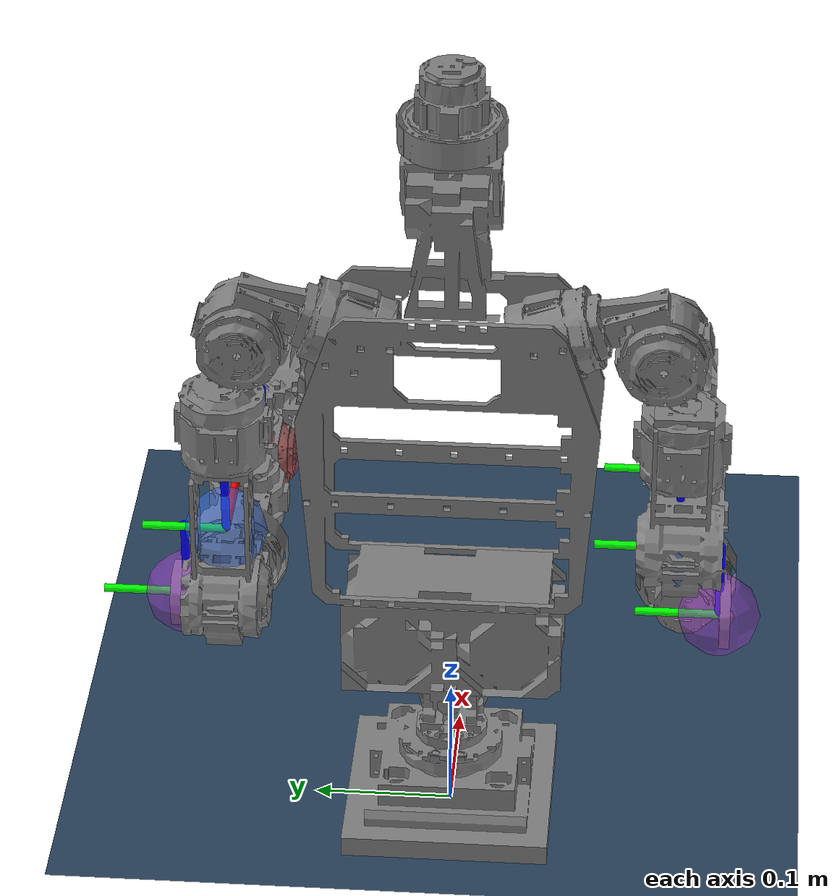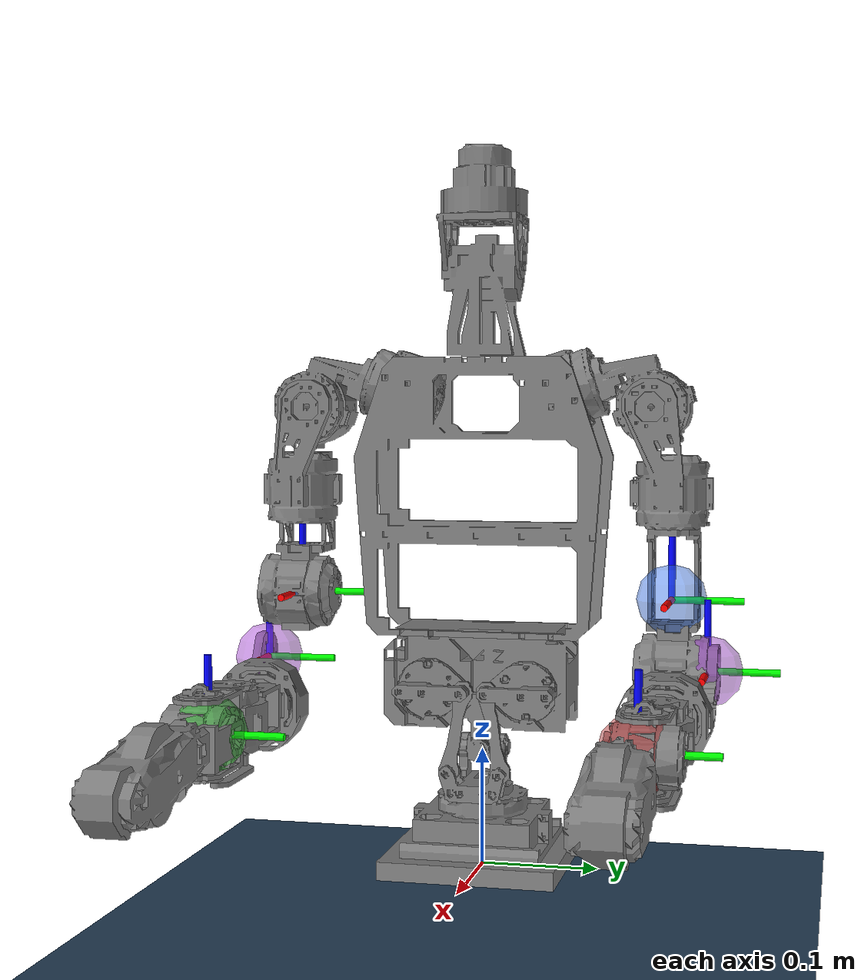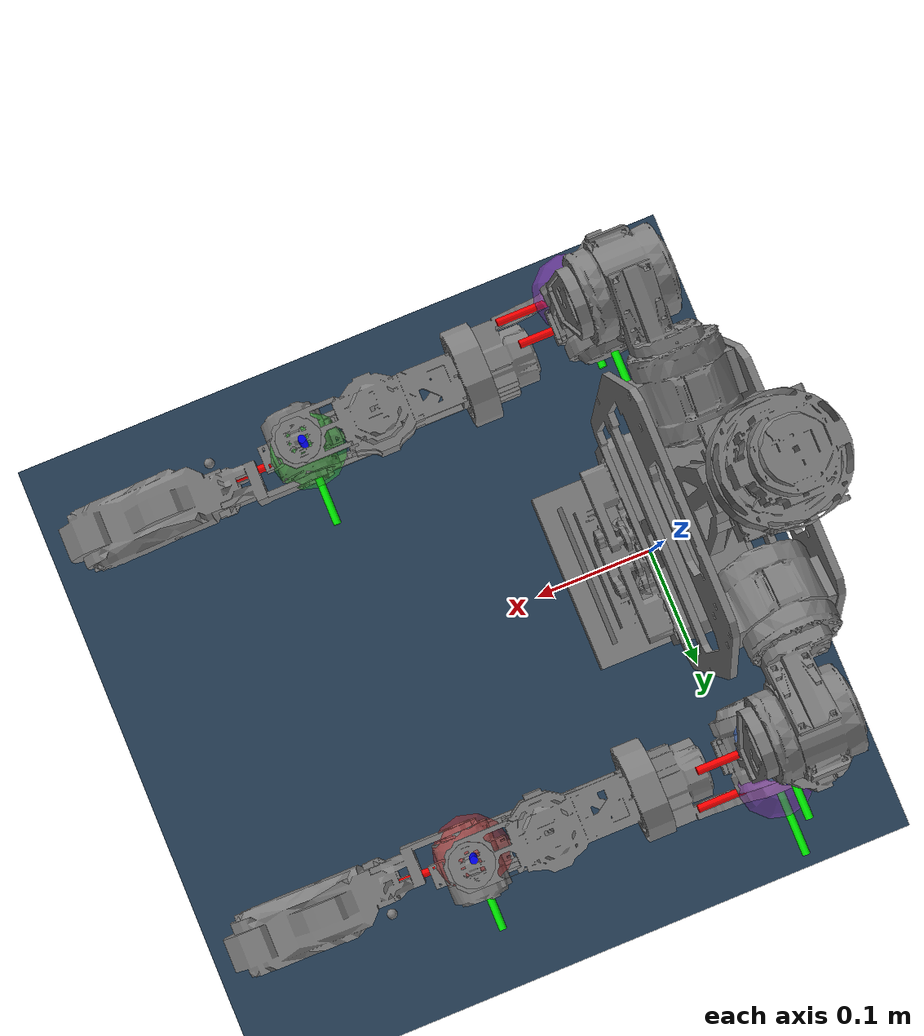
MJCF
<mujoco model="Semi_Taks_LV1_scene">
  <include file="Semi_Taks_LV1.xml" />
  <statistic center="0.15 0 0.3" extent="1.0" />
  <visual>
    <headlight ambient="0.4 0.4 0.4" diffuse="0.6 0.6 0.6" specular="0.1 0.1 0.1" />
    <rgba haze="0.15 0.25 0.35 1" />
    <global azimuth="140" elevation="-20" />
    <quality shadowsize="4096" />
    <scale framelength="0.08" framewidth="0.003" />
  </visual>
  <asset>
    <texture type="skybox" builtin="gradient" rgb1="0.3 0.5 0.7" rgb2="0 0 0" width="512" height="3072" />
    <texture type="2d" name="groundplane" builtin="checker" mark="edge" rgb1="0.2 0.3 0.4" rgb2="0.1 0.2 0.3" markrgb="0.8 0.8 0.8" width="300" height="300" />
    <material name="groundplane" texture="groundplane" texuniform="true" texrepeat="5 5" reflectance="0.2" />
  </asset>
  <worldbody>
    <light pos="0 0 2.5" dir="0 0 -1" directional="true" />
    <geom name="floor" type="plane" size="0 0 0.05" pos="0 0 -0.002" material="groundplane" contype="2" conaffinity="61" />
    <body name="left_hand_target" mocap="true" pos="0.227630 0.161900 0.149380">
      <inertial pos="0 0 0" mass="0.001" diaginertia="1e-8 1e-8 1e-8" />
      <geom type="sphere" size="0.03" contype="0" conaffinity="0" rgba="0.8 0.2 0.2 0.5" />
      <geom type="cylinder" size="0.003" fromto="0 0 0 0.06 0 0" contype="0" conaffinity="0" rgba="1 0 0 1" />
      <geom type="cylinder" size="0.003" fromto="0 0 0 0 0.06 0" contype="0" conaffinity="0" rgba="0 1 0 1" />
      <geom type="cylinder" size="0.003" fromto="0 0 0 0 0 0.06" contype="0" conaffinity="0" rgba="0 0 1 1" />
    </body>
    <body name="right_hand_target" mocap="true" pos="0.227630 -0.161900 0.149380">
      <inertial pos="0 0 0" mass="0.001" diaginertia="1e-8 1e-8 1e-8" />
      <geom type="sphere" size="0.03" contype="0" conaffinity="0" rgba="0.2 0.8 0.2 0.5" />
      <geom type="cylinder" size="0.003" fromto="0 0 0 0.06 0 0" contype="0" conaffinity="0" rgba="1 0 0 1" />
      <geom type="cylinder" size="0.003" fromto="0 0 0 0 0.06 0" contype="0" conaffinity="0" rgba="0 1 0 1" />
      <geom type="cylinder" size="0.003" fromto="0 0 0 0 0 0.06" contype="0" conaffinity="0" rgba="0 0 1 1" />
    </body>
    <body name="left_shoulder_target" mocap="true" pos="0.000200 0.161900 0.233075">
      <inertial pos="0 0 0" mass="0.001" diaginertia="1e-8 1e-8 1e-8" />
      <geom type="sphere" size="0.03" contype="0" conaffinity="0" rgba="0.2 0.45 0.95 0.5" />
      <geom type="cylinder" size="0.003" fromto="0 0 0 0.06 0 0" contype="0" conaffinity="0" rgba="1 0 0 1" />
      <geom type="cylinder" size="0.003" fromto="0 0 0 0 0.06 0" contype="0" conaffinity="0" rgba="0 1 0 1" />
      <geom type="cylinder" size="0.003" fromto="0 0 0 0 0 0.06" contype="0" conaffinity="0" rgba="0 0 1 1" />
    </body>
    <body name="right_shoulder_target" mocap="true" pos="0.000200 -0.161900 0.233075">
      <inertial pos="0 0 0" mass="0.001" diaginertia="1e-8 1e-8 1e-8" />
      <geom type="sphere" size="0.03" contype="0" conaffinity="0" rgba="0.2 0.45 0.95 0.5" />
      <geom type="cylinder" size="0.003" fromto="0 0 0 0.06 0 0" contype="0" conaffinity="0" rgba="1 0 0 1" />
      <geom type="cylinder" size="0.003" fromto="0 0 0 0 0.06 0" contype="0" conaffinity="0" rgba="0 1 0 1" />
      <geom type="cylinder" size="0.003" fromto="0 0 0 0 0 0.06" contype="0" conaffinity="0" rgba="0 0 1 1" />
    </body>
    <body name="left_elbow_target" mocap="true" pos="0.003200 0.192299 0.174380">
      <inertial pos="0 0 0" mass="0.001" diaginertia="1e-8 1e-8 1e-8" />
      <geom type="sphere" size="0.03" contype="0" conaffinity="0" rgba="0.65 0.25 0.85 0.5" />
      <geom type="cylinder" size="0.003" fromto="0 0 0 0.06 0 0" contype="0" conaffinity="0" rgba="1 0 0 1" />
      <geom type="cylinder" size="0.003" fromto="0 0 0 0 0.06 0" contype="0" conaffinity="0" rgba="0 1 0 1" />
      <geom type="cylinder" size="0.003" fromto="0 0 0 0 0 0.06" contype="0" conaffinity="0" rgba="0 0 1 1" />
    </body>
    <body name="right_elbow_target" mocap="true" pos="0.003200 -0.192299 0.174380">
      <inertial pos="0 0 0" mass="0.001" diaginertia="1e-8 1e-8 1e-8" />
      <geom type="sphere" size="0.03" contype="0" conaffinity="0" rgba="0.65 0.25 0.85 0.5" />
      <geom type="cylinder" size="0.003" fromto="0 0 0 0.06 0 0" contype="0" conaffinity="0" rgba="1 0 0 1" />
      <geom type="cylinder" size="0.003" fromto="0 0 0 0 0.06 0" contype="0" conaffinity="0" rgba="0 1 0 1" />
      <geom type="cylinder" size="0.003" fromto="0 0 0 0 0 0.06" contype="0" conaffinity="0" rgba="0 0 1 1" />
    </body>
  </worldbody>
</mujoco>

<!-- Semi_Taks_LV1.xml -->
<mujoco model="Semi_Taks_LV1">
  <compiler angle="radian" meshdir="meshes/" autolimits="true" />
  <option timestep="0.002" iterations="150" solver="Newton" tolerance="1e-10" integrator="implicit" gravity="0 0 -9.81" />
  <default>
    <joint limited="true" />
    <geom contype="0" conaffinity="0" condim="1" group="1" density="0" friction="1 0.005 0.0001" />
    <equality solref="0.01 2" solimp="0.95 0.999 0.001 0.5 2" />
    <default class="torso_motor">
      <joint armature="0.00985321" damping="0.01" frictionloss="0.1" />
    </default>
    <default class="shoulder_motor">
      <joint armature="0.0030254460886951994" damping="0.01" frictionloss="0.1" />
    </default>
    <default class="wrist_motor">
      <joint armature="0.00074568" damping="0.01" frictionloss="0.01" />
    </default>
  </default>
  <asset>
    <mesh name="base_link" file="base_link.STL" />
    <mesh name="head_pitch_link" file="head_pitch_link.STL" />
    <mesh name="head_yaw_link" file="head_yaw_link.STL" />
    <mesh name="left_elbow_link" file="left_elbow_link.STL" />
    <mesh name="left_shoulder_pitch_link" file="left_shoulder_pitch_link.STL" />
    <mesh name="left_shoulder_roll_link" file="left_shoulder_roll_link.STL" />
    <mesh name="left_shoulder_yaw_link" file="left_shoulder_yaw_link.STL" />
    <mesh name="left_wrist_pitch_link" file="left_wrist_pitch_link.STL" />
    <mesh name="left_wrist_roll_link" file="left_wrist_roll_link.STL" />
    <mesh name="left_wrist_yaw_inner_rod_link" file="left_wrist_yaw_inner_rod_link.STL" />
    <mesh name="left_wrist_yaw_link" file="left_wrist_yaw_link.STL" />
    <mesh name="left_wrist_yaw_motor_link" file="left_wrist_yaw_motor_link.STL" />
    <mesh name="left_wrist_yaw_outer_rod_link" file="left_wrist_yaw_outer_rod_link.STL" />
    <mesh name="right_elbow_link" file="right_elbow_link.STL" />
    <mesh name="right_shoulder_pitch_link" file="right_shoulder_pitch_link.STL" />
    <mesh name="right_shoulder_roll_link" file="right_shoulder_roll_link.STL" />
    <mesh name="right_shoulder_yaw_link" file="right_shoulder_yaw_link.STL" />
    <mesh name="right_wrist_pitch_link" file="right_wrist_pitch_link.STL" />
    <mesh name="right_wrist_roll_link" file="right_wrist_roll_link.STL" />
    <mesh name="right_wrist_yaw_inner_rod_link" file="right_wrist_yaw_inner_rod_link.STL" />
    <mesh name="right_wrist_yaw_link" file="right_wrist_yaw_link.STL" />
    <mesh name="right_wrist_yaw_motor_link" file="right_wrist_yaw_motor_link.STL" />
    <mesh name="right_wrist_yaw_outer_rod_link" file="right_wrist_yaw_outer_rod_link.STL" />
    <mesh name="waist_left_link_driven_link" file="waist_left_link_driven_link.STL" />
    <mesh name="waist_left_motor_link" file="waist_left_motor_link.STL" />
    <mesh name="waist_pitch_link" file="waist_pitch_link.STL" />
    <mesh name="waist_right_link_driven_link" file="waist_right_link_driven_link.STL" />
    <mesh name="waist_right_motor_link" file="waist_right_motor_link.STL" />
    <mesh name="waist_roll_link" file="waist_roll_link.STL" />
    <mesh name="waist_roll_link__1" file="waist_roll_link_torso.STL" />
    <mesh name="waist_roll_link__2" file="waist_roll_link_right_shoulder_mount.STL" />
    <mesh name="waist_roll_link__3" file="waist_roll_link_left_shoulder_mount.STL" />
    <mesh name="waist_yaw_link" file="waist_yaw_link.STL" />
  </asset>
  <worldbody>
    <body name="base_link" pos="0 0 0">
      <inertial pos="3.615731527232031e-05 7.216508380371886e-07 0.0236463859394359" mass="2.028270999256437" diaginertia="0.00320405321379563 0.003227351317043934 0.005300317236807891" quat="0.7068692470884984 4.045966068608527e-05 -4.868688980210021e-05 -0.7073442326852902" />
      <geom type="mesh" mesh="base_link" />
      <geom name="pelvis_collision" type="mesh" mesh="base_link" contype="1" conaffinity="2" group="0" />
      <body name="waist_yaw_link" pos="0 0 0.0698">
        <inertial pos="0.01254820741023754 1.774573045730403e-07 0.004477069717120669" mass="0.1072849788223774" diaginertia="3.219725689293869e-05 5.038539659835473e-05 6.264688348621567e-05" quat="0.9999807613707475 3.961500670809034e-06 -0.006202937080373303 2.107755930732424e-05" />
        <joint name="waist_yaw_joint" class="torso_motor" type="hinge" axis="0 0 1" range="-2.618 2.618" />
        <geom type="mesh" mesh="waist_yaw_link" />
        <geom name="waist_yaw_link_collision" type="mesh" mesh="waist_yaw_link" contype="4" conaffinity="2" group="0" />
        <body name="waist_right_link_driven_link" pos="0.03415 -0.0221 0.0195">
          <inertial pos="-0.0004222742054754217 0.004492540189479952 0.02335166941052011" mass="0.01206529948233483" diaginertia="1.982038329099174e-07 8.088291506305952e-06 8.253733665269904e-06" quat="0.05983465927130303 0.7063064689681575 -0.05954225735721248 -0.7028553941120661" />
          <joint name="waist_right_link_driven_joint" class="torso_motor" type="ball" limited="false" />
          <geom type="mesh" mesh="waist_right_link_driven_link" />
          <geom name="waist_right_link_driven_link_collision" type="mesh" mesh="waist_right_link_driven_link" contype="4" conaffinity="2" group="0" />
        </body>
        <body name="waist_left_link_driven_link" pos="0.03415 0.022 0.0195">
          <inertial pos="-0.0004222742054754633 -0.004459511522222754 0.0233878976690826" mass="0.01206529948233483" diaginertia="1.982038329800774e-07 8.088291506258164e-06 8.253733665292283e-06" quat="0.7029030743452723 0.05897672014921494 -0.7063543821429821 -0.05926635963016416" />
          <joint name="waist_left_link_driven_joint" class="torso_motor" type="ball" limited="false" />
          <geom type="mesh" mesh="waist_left_link_driven_link" />
          <geom name="waist_left_link_driven_link_collision" type="mesh" mesh="waist_left_link_driven_link" contype="4" conaffinity="2" group="0" />
        </body>
        <body name="waist_pitch_link" pos="0 0 0.0355">
          <inertial pos="0.0005514692704038878 0.0001362726318468048 -0.002999998175466909" mass="0.1455350284507047" diaginertia="1.811399186504572e-05 1.880139950655852e-05 2.892649957492744e-05" quat="0.71220371439526 1.385339520915e-06 1.362759154760334e-06 -0.7019728407836152" />
          <joint name="waist_pitch_joint" class="torso_motor" type="hinge" axis="0 1 0" range="-0.7854 0.7854" />
          <geom type="mesh" mesh="waist_pitch_link" />
          <geom name="waist_pitch_link_collision" type="mesh" mesh="waist_pitch_link" contype="4" conaffinity="2" group="0" />
          <body name="waist_roll_link" pos="0 0 0">
            <inertial pos="-0.006215893090878439 -0.0001728662368248775 0.1839629135641128" mass="4.031182211173786" diaginertia="0.01243463367725486 0.08121873133623367 0.09090112362911176" quat="0.7102087284969349 0.0004447629884379354 -0.7039908859293441 -0.0004434873934207381" />
            <joint name="waist_roll_joint" class="torso_motor" type="hinge" axis="1 0 0" range="-0.7854 0.7854" />
            <geom type="mesh" mesh="waist_roll_link" />
            <geom name="waist_roll_collision" type="mesh" mesh="waist_roll_link" contype="4" conaffinity="2" group="0" />
            <geom type="mesh" mesh="waist_roll_link__1" />
            <geom name="waist_roll_collision_1" type="mesh" mesh="waist_roll_link__1" contype="4" conaffinity="2" group="0" />
            <geom type="mesh" mesh="waist_roll_link__2" />
            <geom name="waist_roll_collision_2" type="mesh" mesh="waist_roll_link__2" contype="4" conaffinity="2" group="0" />
            <geom type="mesh" mesh="waist_roll_link__3" />
            <geom name="waist_roll_collision_3" type="mesh" mesh="waist_roll_link__3" contype="4" conaffinity="2" group="0" />
            <body name="waist_right_motor_link" pos="0.02515 -0.0425 0.052">
              <inertial pos="0.005045957652873252 0.002539038177855203 -0.002999998175600954" mass="0.06153448822481093" diaginertia="9.469248558005692e-06 2.051156321449989e-05 2.286533124687244e-05" quat="-0.4960948446569809 -0.4960948446640437 0.5038748903286863 0.5038748903237577" />
              <joint name="waist_right_motor_joint" class="torso_motor" type="hinge" axis="1 0 0" range="-0.75000000 1.16190000" />
              <geom type="mesh" mesh="waist_right_motor_link" />
              <geom name="waist_right_motor_link_collision" type="mesh" mesh="waist_right_motor_link" contype="4" conaffinity="2" group="0" />
            </body>
            <body name="waist_left_motor_link" pos="0.02515 0.0425 0.052">
              <inertial pos="0.005045957652873252 -0.00253901324983475 -0.00299622045718162" mass="0.06153448822481093" diaginertia="9.469248558005692e-06 2.051156321449988e-05 2.286533124687243e-05" quat="0.5042495987744153 0.5034999030172355 -0.4964637674426716 -0.4957256473232997" />
              <joint name="waist_left_motor_joint" class="torso_motor" type="hinge" axis="1 0 0" range="-1.16190000 0.75000000" />
              <geom type="mesh" mesh="waist_left_motor_link" />
              <geom name="waist_left_motor_link_collision" type="mesh" mesh="waist_left_motor_link" contype="4" conaffinity="2" group="0" />
            </body>
            <body name="right_shoulder_pitch_link" pos="-0.0048 -0.0982676 0.3108799">
              <inertial pos="0.008627194328436411 -0.04554020901173107 -0.01948230209624802" mass="0.5718550961793376" diaginertia="0.0002681848144770728 0.0003422831986915668 0.0003556845691616242" quat="0.6814611056778687 0.281098447059946 0.1778477563986825 -0.6518930894347157" />
              <joint name="right_shoulder_pitch_joint" class="shoulder_motor" type="hinge" axis="0 0.94832 -0.3173" range="-3.1415 1.0472" />
              <geom type="mesh" mesh="right_shoulder_pitch_link" />
              <geom name="right_shoulder_pitch_collision" type="mesh" mesh="right_shoulder_pitch_link" contype="8" conaffinity="50" group="0" />
              <body name="right_shoulder_roll_link" pos="0.042 -0.0486762 -0.0218439">
                <inertial pos="-0.03527126628168185 -0.01433615164985719 -0.06783766673615693" mass="0.5652982993172326" diaginertia="0.0002671111202404957 0.0004114129755633964 0.0004332048263893371" quat="-0.383928697001941 -0.302824114813696 -0.5811660201251703 0.6504939416762952" />
                <joint name="right_shoulder_roll_joint" class="shoulder_motor" type="hinge" axis="1 0 0" range="-2.2515 1.5882" />
                <geom type="mesh" mesh="right_shoulder_roll_link" />
                <geom name="right_shoulder_roll_collision" type="mesh" mesh="right_shoulder_roll_link" contype="8" conaffinity="50" group="0" />
                <body name="right_shoulder_yaw_link" pos="-0.0383 -0.0149556 -0.105461">
                  <inertial pos="0.001870059667368326 -0.001602641442290054 -0.1073988483988307" mass="0.5784603077913861" diaginertia="0.0002750809364595264 0.0006547511708962495 0.0006796907636802913" quat="0.00092919415258101 0.666527132782034 0.01281744783487267 0.7453699959715228" />
                  <joint name="right_shoulder_yaw_joint" class="shoulder_motor" type="hinge" axis="0 0 1" range="-2.618 2.618" />
                  <geom type="mesh" mesh="right_shoulder_yaw_link" />
                  <geom name="right_shoulder_yaw_collision" type="mesh" mesh="right_shoulder_yaw_link" contype="8" conaffinity="50" group="0" />
                  <body name="right_elbow_link" pos="0.003 -0.0356006 -0.1154997">
                    <inertial pos="0.06625808209753588 0.02745142866062647 -0.0235697300032251" mass="0.3259631470204687" diaginertia="0.0001187362080778953 0.0002396431084334887 0.0002409384075634666" quat="-0.4422045801026257 0.862592795399898 0.107780393669499 -0.2208442107026994" />
                    <joint name="right_elbow_joint" class="shoulder_motor" type="hinge" axis="0 1 0" range="-1.0472 1.5708" />
                    <site name="right_elbow" pos="0 0 0" size="0.006" />
                    <geom type="mesh" mesh="right_elbow_link" />
                    <geom name="right_elbow_collision" type="mesh" mesh="right_elbow_link" contype="8" conaffinity="50" group="0" />
                    <body name="right_wrist_roll_link" pos="0.0972 0.0305006 -0.025">
                      <inertial pos="0.05705037987646468 -1.518472729272746e-05 0.00116409611339699" mass="0.4165237436850193" diaginertia="0.0001976031591587451 0.0005867765893378462 0.0006106968753898552" quat="0.7061903682963695 -0.7079628857190268 -0.006445251467427827 -0.006494220765244513" />
                      <joint name="right_wrist_roll_joint" class="wrist_motor" type="hinge" axis="1 0 0" range="-2.67 2.67" />
                      <geom type="mesh" mesh="right_wrist_roll_link" />
                      <geom name="right_wrist_roll_collision" type="mesh" mesh="right_wrist_roll_link" contype="8" conaffinity="50" group="0" />
                      <body name="right_wrist_yaw_motor_link" pos="0.071 -6e-07 0.0012997">
                        <inertial pos="4.248559121178275e-08 5.782823624955746e-07 -0.03023266637914192" mass="0.006100131928918171" diaginertia="4.307240444844824e-07 7.812635828316256e-07 9.324876704745749e-07" quat="5.281024377919805e-12 -0.7071067811865459 0.7071067811865491 -2.722024498362503e-14" />
                        <joint name="right_wrist_yaw_motor_joint" class="wrist_motor" type="hinge" axis="0 0 1" range="-1.309 1.309" />
                        <geom type="mesh" mesh="right_wrist_yaw_motor_link" />
                        <geom name="right_wrist_yaw_motor_link_collision" type="mesh" mesh="right_wrist_yaw_motor_link" contype="8" conaffinity="50" group="0" />
                        <body name="right_wrist_yaw_outer_rod_link" pos="0 -0.012 -0.038">
                          <inertial pos="0.03025004248552082 -0.004500304485048345 -7.840760069587061e-05" mass="0.005904557513617986" diaginertia="6.094309888750246e-08 2.024811491137713e-06 2.071379005693937e-06" quat="-0.006076178565180265 0.9999815398566335 -3.726252010796779e-16 2.816892719016614e-15" />
                          <joint name="right_wrist_yaw_outer_rod_joint" class="wrist_motor" type="hinge" axis="0 0 1" limited="false" />
                          <geom type="mesh" mesh="right_wrist_yaw_outer_rod_link" />
                          <geom name="right_wrist_yaw_outer_rod_link_collision" type="mesh" mesh="right_wrist_yaw_outer_rod_link" contype="8" conaffinity="50" group="0" />
                        </body>
                        <body name="right_wrist_yaw_inner_rod_link" pos="0 0.012 -0.038">
                          <inertial pos="0.03025004248552079 0.00450146104992416 -7.840760069587061e-05" mass="0.005904557513617986" diaginertia="6.094309888750246e-08 2.024811491137712e-06 2.071379005693936e-06" quat="0.9999815398566335 -0.00607617856518676 -2.80913865035733e-15 2.468638619212179e-17" />
                          <joint name="right_wrist_yaw_inner_rod_joint" class="wrist_motor" type="hinge" axis="0 0 1" limited="false" />
                          <geom type="mesh" mesh="right_wrist_yaw_inner_rod_link" />
                          <geom name="right_wrist_yaw_inner_rod_link_collision" type="mesh" mesh="right_wrist_yaw_inner_rod_link" contype="8" conaffinity="50" group="0" />
                        </body>
                      </body>
                      <body name="right_wrist_yaw_link" pos="0.1315 -6e-07 0">
                        <inertial pos="-0.0001309102913537863 -0.001518180455257451 -0.0004661132764635922" mass="0.2829538436436055" diaginertia="8.929776354177295e-05 0.0001018668552999004 0.0001130786340444418" quat="0.706402710678379 0.03030899335559634 -0.7070926161159841 0.009828911550237259" />
                        <joint name="right_wrist_yaw_joint" class="wrist_motor" type="hinge" axis="0 0 1" range="-1.309 1.309" />
                        <geom type="mesh" mesh="right_wrist_yaw_link" />
                        <geom name="right_wrist_yaw_collision" type="mesh" mesh="right_wrist_yaw_link" contype="8" conaffinity="50" group="0" />
                        <body name="right_wrist_pitch_link" pos="0 0 0">
                          <inertial pos="0.1212949356021869 0.006058475154452014 -0.0058920822706722" mass="0.8539831028978021" diaginertia="0.0002721179065874577 0.001301829010017592 0.001338601216038249" quat="0.6818399662780394 0.7285743812219072 0.01037948454068169 -0.06454376587825439" />
                          <joint name="right_wrist_pitch_joint" class="wrist_motor" type="hinge" axis="0 1 0" range="-1.5708 1.5708" />
                          <site name="right_tcp" pos="0.06851 -0.01358 -0.0005753" size="0.004" />
                          <camera name="right_wrist_camera" pos="0.1034313514828682 0.023001 0.03892825171351433" xyaxes="0 -1 0 0.342020143326 0 0.939692620786" fovy="120" resolution="128 128" />
                          <geom type="mesh" mesh="right_wrist_pitch_link" />
                          <geom name="right_hand_collision" type="mesh" mesh="right_wrist_pitch_link" contype="8" conaffinity="50" group="0" />
                        </body>
                      </body>
                    </body>
                  </body>
                </body>
              </body>
            </body>
            <body name="left_shoulder_pitch_link" pos="-0.0048 0.0982676 0.3108799">
              <inertial pos="0.0086271981303996 0.04554022346996121 -0.01948231444624399" mass="0.5718554098730556" diaginertia="0.0002681848620268912 0.0003422835805579798 0.000355684929504569" quat="0.2810986390976007 0.6814613646256432 0.6518926007236866 -0.177848252006425" />
              <joint name="left_shoulder_pitch_joint" class="shoulder_motor" type="hinge" axis="0 0.94832 0.3173" range="-3.1415 1.0472" />
              <geom type="mesh" mesh="left_shoulder_pitch_link" />
              <geom name="left_shoulder_pitch_collision" type="mesh" mesh="left_shoulder_pitch_link" contype="16" conaffinity="42" group="0" />
              <body name="left_shoulder_roll_link" pos="0.042 0.0486762 -0.0218439">
                <inertial pos="-0.03527128186933699 0.0143361607647785 -0.06783767227483029" mass="0.5652986130109504" diaginertia="0.0002671112654094955 0.0004114132366153298 0.0004332052092044648" quat="0.3028233733456175 0.3839286106690312 0.6504938312345916 -0.5811665871254738" />
                <joint name="left_shoulder_roll_joint" class="shoulder_motor" type="hinge" axis="1 0 0" range="-1.5882 2.2515" />
                <geom type="mesh" mesh="left_shoulder_roll_link" />
                <geom name="left_shoulder_roll_collision" type="mesh" mesh="left_shoulder_roll_link" contype="16" conaffinity="42" group="0" />
                <body name="left_shoulder_yaw_link" pos="-0.0383 0.0149556 -0.105461">
                  <inertial pos="0.001870054103441493 0.001602647610651015 -0.1073988663823625" mass="0.5784606214851048" diaginertia="0.0002750810071224332 0.0006547516089075991 0.0006796911813522524" quat="0.6665272554295877 0.0009298078893019431 -0.7453698942756103 -0.01281693935210863" />
                  <joint name="left_shoulder_yaw_joint" class="shoulder_motor" type="hinge" axis="0 0 1" range="-2.618 2.618" />
                  <geom type="mesh" mesh="left_shoulder_yaw_link" />
                  <geom name="left_shoulder_yaw_collision" type="mesh" mesh="left_shoulder_yaw_link" contype="16" conaffinity="42" group="0" />
                  <body name="left_elbow_link" pos="0.003 0.0356006 -0.1154997">
                    <inertial pos="0.06625808209753656 -0.02745142620994392 -0.02356973000321383" mass="0.3259631470204687" diaginertia="0.0001187362080779007 0.0002396431084334748 0.0002409384075634472" quat="0.8625927953996515 -0.442204580103106 0.2208442107027612 -0.1077803936693742" />
                    <joint name="left_elbow_joint" class="shoulder_motor" type="hinge" axis="0 1 0" range="-1.0472 1.5708" />
                    <site name="left_elbow" pos="0 0 0" size="0.006" />
                    <geom type="mesh" mesh="left_elbow_link" />
                    <geom name="left_elbow_collision" type="mesh" mesh="left_elbow_link" contype="16" conaffinity="42" group="0" />
                    <body name="left_wrist_roll_link" pos="0.0972 -0.0305006 -0.025">
                      <inertial pos="0.05705037987646476 1.518717796392122e-05 0.001164096113408064" mass="0.4165237436850195" diaginertia="0.000197603159158746 0.0005867765893408207 0.0006106968753868808" quat="0.7061903682961472 0.7079628857192494 -0.006445251467165756 0.00649422076540132" />
                      <joint name="left_wrist_roll_joint" class="wrist_motor" type="hinge" axis="1 0 0" range="-2.67 2.67" />
                      <geom type="mesh" mesh="left_wrist_roll_link" />
                      <geom name="left_wrist_roll_collision" type="mesh" mesh="left_wrist_roll_link" contype="16" conaffinity="42" group="0" />
                      <body name="left_wrist_yaw_motor_link" pos="0.071 6e-07 0.0012997">
                        <inertial pos="4.24855913783162e-08 -5.758316779791439e-07 -0.03023266637913091" mass="0.006100131928918171" diaginertia="4.307240444844805e-07 7.81263582831629e-07 9.324876704745785e-07" quat="5.216265031765724e-14 -0.7071067811865472 0.7071067811865478 -5.259452794165331e-12" />
                        <joint name="left_wrist_yaw_motor_joint" class="wrist_motor" type="hinge" axis="0 0 1" range="-1.309 1.309" />
                        <geom type="mesh" mesh="left_wrist_yaw_motor_link" />
                        <geom name="left_wrist_yaw_motor_link_collision" type="mesh" mesh="left_wrist_yaw_motor_link" contype="16" conaffinity="42" group="0" />
                        <body name="left_wrist_yaw_outer_rod_link" pos="0 0.012 -0.038">
                          <inertial pos="0.03025004248552093 0.004500306935733361 -7.840760068381081e-05" mass="0.005904557513617986" diaginertia="6.094309888750246e-08 2.024811491137712e-06 2.071379005693936e-06" quat="0.006076178565140961 0.9999815398566338 -2.516192309767681e-16 2.602557371344622e-15" />
                          <joint name="left_wrist_yaw_outer_rod_joint" class="wrist_motor" type="hinge" axis="0 0 1" limited="false" />
                          <geom type="mesh" mesh="left_wrist_yaw_outer_rod_link" />
                          <geom name="left_wrist_yaw_outer_rod_link_collision" type="mesh" mesh="left_wrist_yaw_outer_rod_link" contype="16" conaffinity="42" group="0" />
                        </body>
                        <body name="left_wrist_yaw_inner_rod_link" pos="0 -0.012 -0.038">
                          <inertial pos="0.03025004248552082 -0.004501458599238922 -7.840760068597574e-05" mass="0.005904557513617986" diaginertia="6.094309888750246e-08 2.024811491137712e-06 2.071379005693937e-06" quat="-0.006076178565208106 0.9999815398566334 -4.898910614742009e-16 2.817605260477575e-15" />
                          <joint name="left_wrist_yaw_inner_rod_joint" class="wrist_motor" type="hinge" axis="0 0 1" limited="false" />
                          <geom type="mesh" mesh="left_wrist_yaw_inner_rod_link" />
                          <geom name="left_wrist_yaw_inner_rod_link_collision" type="mesh" mesh="left_wrist_yaw_inner_rod_link" contype="16" conaffinity="42" group="0" />
                        </body>
                      </body>
                      <body name="left_wrist_yaw_link" pos="0.1315 6e-07 0">
                        <inertial pos="-0.000130910291353703 0.00151818290594008 -0.0004661132764524345" mass="0.2829538436436055" diaginertia="8.929776354177296e-05 0.0001018668552999005 0.0001130786340444417" quat="0.70640271067838 -0.0303089933555714 -0.707092616115984 -0.009828911550260565" />
                        <joint name="left_wrist_yaw_joint" class="wrist_motor" type="hinge" axis="0 0 1" range="-1.309 1.309" />
                        <geom type="mesh" mesh="left_wrist_yaw_link" />
                        <geom name="left_wrist_yaw_collision" type="mesh" mesh="left_wrist_yaw_link" contype="16" conaffinity="42" group="0" />
                        <body name="left_wrist_pitch_link" pos="0 0 0">
                          <inertial pos="0.1212949364782549 -0.006058472607583104 -0.005892082798664516" mass="0.8539830859062353" diaginertia="0.0002721178976041967 0.001301828971541018 0.001338601171039436" quat="0.681839949023711 -0.7285743979989799 0.01037947736017451 0.06454375992686702" />
                          <joint name="left_wrist_pitch_joint" class="wrist_motor" type="hinge" axis="0 1 0" range="-1.5708 1.5708" />
                          <site name="left_tcp" pos="0.06851 0.01358 -0.0005753" size="0.004" />
                          <camera name="left_wrist_camera" pos="0.1034313514828682 -0.023001 0.03892825171351433" xyaxes="0 -1 0 0.342020143326 0 0.939692620786" fovy="120" resolution="128 128" />
                          <geom type="mesh" mesh="left_wrist_pitch_link" />
                          <geom name="left_hand_collision" type="mesh" mesh="left_wrist_pitch_link" contype="16" conaffinity="42" group="0" />
                        </body>
                      </body>
                    </body>
                  </body>
                </body>
              </body>
            </body>
            <body name="head_pitch_link" pos="-0.0055 0 0.415">
              <inertial pos="5.000000031474792e-05 0.002791786892488407 0.02212401395257202" mass="0.07419637817977008" diaginertia="3.766101462078207e-05 6.660262715603233e-05 7.0139289211348e-05" quat="0.7041814808171464 -0.06425295389616814 0.06425295397617453 0.704181480795344" />
              <joint name="head_pitch_joint" class="wrist_motor" type="hinge" axis="0 1 0" range="-1.57 1.57" />
              <geom type="mesh" mesh="head_pitch_link" />
              <geom name="head_pitch_link_collision" type="mesh" mesh="head_pitch_link" contype="32" conaffinity="26" group="0" />
              <body name="head_yaw_link" pos="0 0 0.039">
                <inertial pos="-9.964187000209047e-06 -5.660401050156666e-05 0.02227408654164775" mass="0.3528018307094871" diaginertia="0.0001644752036608517 0.0001655545212528329 0.0001680750451324987" quat="0.6646598981617325 -0.6806964160065533 -0.1869869410489988 -0.2447764140774334" />
                <joint name="head_yaw_joint" class="wrist_motor" type="hinge" axis="0 0 1" range="-2.618 2.618" />
                <camera name="head_left_camera" pos="0.08892307593 0.02979965544 0.04661159739" xyaxes="0 -1 0 0.1719291 0 0.985109326" fovy="125" resolution="1920 1080" />
                <camera name="head_right_camera" pos="0.08892307593 -0.03020034456 0.04661159739" xyaxes="0 -1 0 0.1719291 0 0.985109326" fovy="125" resolution="1920 1080" />
                <geom type="mesh" mesh="head_yaw_link" />
                <geom name="head_collision" type="mesh" mesh="head_yaw_link" contype="32" conaffinity="26" group="0" />
              </body>
            </body>
          </body>
        </body>
      </body>
    </body>
  </worldbody>
  <equality>
    <connect name="waist_right_parallel_loop" body1="waist_right_motor_link" body2="waist_right_link_driven_link" anchor="0.0082 0.0321 0" />
    <connect name="waist_left_parallel_loop" body1="waist_left_motor_link" body2="waist_left_link_driven_link" anchor="0.0082 -0.0321 0" />
    <connect name="right_wrist_yaw_outer_loop" body1="right_wrist_yaw_outer_rod_link" body2="right_wrist_yaw_link" anchor="0.0605 0 0" solref="0.002 1" solimp="0.95 0.99 0.001 0.5 2" />
    <connect name="right_wrist_yaw_inner_loop" body1="right_wrist_yaw_inner_rod_link" body2="right_wrist_yaw_link" anchor="0.0605 0 0" solref="0.002 1" solimp="0.95 0.99 0.001 0.5 2" />
    <connect name="left_wrist_yaw_outer_loop" body1="left_wrist_yaw_outer_rod_link" body2="left_wrist_yaw_link" anchor="0.0605 0 0" solref="0.002 1" solimp="0.95 0.99 0.001 0.5 2" />
    <connect name="left_wrist_yaw_inner_loop" body1="left_wrist_yaw_inner_rod_link" body2="left_wrist_yaw_link" anchor="0.0605 0 0" solref="0.002 1" solimp="0.95 0.99 0.001 0.5 2" />
  </equality>
  <actuator>
    <position name="waist_yaw_joint" joint="waist_yaw_joint" ctrlrange="-2.618 2.618" kp="38.89891391234306" kv="2.4763817720221986" forcerange="-60 60" />
    <position name="waist_right_motor_joint" joint="waist_right_motor_joint" ctrlrange="-0.75000000 1.16190000" kp="77.79782782468612" kv="4.952763544044397" forcerange="-60 60" />
    <position name="waist_left_motor_joint" joint="waist_left_motor_joint" ctrlrange="-1.16190000 0.75000000" kp="77.79782782468612" kv="4.952763544044397" forcerange="-60 60" />
    <position name="right_shoulder_pitch_joint" joint="right_shoulder_pitch_joint" ctrlrange="-3.1415 1.0472" kp="11.943982412897888" kv="0.7603775364861449" forcerange="-30 30" />
    <position name="right_shoulder_roll_joint" joint="right_shoulder_roll_joint" ctrlrange="-2.2515 1.5882" kp="11.943982412897888" kv="0.7603775364861449" forcerange="-30 30" />
    <position name="right_shoulder_yaw_joint" joint="right_shoulder_yaw_joint" ctrlrange="-2.618 2.618" kp="11.943982412897888" kv="0.7603775364861449" forcerange="-30 30" />
    <position name="right_elbow_joint" joint="right_elbow_joint" ctrlrange="-0.78 1.5708" kp="11.943982412897888" kv="0.7603775364861449" forcerange="-30 30" />
    <position name="right_wrist_roll_joint" joint="right_wrist_roll_joint" ctrlrange="-2.67 2.67" kp="2.943826643921725" kv="0.18740982479430696" forcerange="-6 6" />
    <position name="right_wrist_yaw_motor_joint" joint="right_wrist_yaw_motor_joint" ctrlrange="-1.309 1.309" kp="2.943826643921725" kv="0.18740982479430696" forcerange="-6 6" />
    <position name="right_wrist_pitch_joint" joint="right_wrist_pitch_joint" ctrlrange="-1.5708 1.5708" kp="2.943826643921725" kv="0.18740982479430696" forcerange="-6 6" />
    <position name="left_shoulder_pitch_joint" joint="left_shoulder_pitch_joint" ctrlrange="-3.1415 1.0472" kp="11.943982412897888" kv="0.7603775364861449" forcerange="-30 30" />
    <position name="left_shoulder_roll_joint" joint="left_shoulder_roll_joint" ctrlrange="-1.5882 2.2515" kp="11.943982412897888" kv="0.7603775364861449" forcerange="-30 30" />
    <position name="left_shoulder_yaw_joint" joint="left_shoulder_yaw_joint" ctrlrange="-2.618 2.618" kp="11.943982412897888" kv="0.7603775364861449" forcerange="-30 30" />
    <position name="left_elbow_joint" joint="left_elbow_joint" ctrlrange="-0.78 1.5708" kp="11.943982412897888" kv="0.7603775364861449" forcerange="-30 30" />
    <position name="left_wrist_roll_joint" joint="left_wrist_roll_joint" ctrlrange="-2.67 2.67" kp="2.943826643921725" kv="0.18740982479430696" forcerange="-6 6" />
    <position name="left_wrist_yaw_motor_joint" joint="left_wrist_yaw_motor_joint" ctrlrange="-1.309 1.309" kp="2.943826643921725" kv="0.18740982479430696" forcerange="-6 6" />
    <position name="left_wrist_pitch_joint" joint="left_wrist_pitch_joint" ctrlrange="-1.5708 1.5708" kp="2.943826643921725" kv="0.18740982479430696" forcerange="-6 6" />
    <position name="head_pitch_joint" joint="head_pitch_joint" ctrlrange="-1.57 1.57" kp="2.943826643921725" kv="0.18740982479430696" forcerange="-6 6" />
    <position name="head_yaw_joint" joint="head_yaw_joint" ctrlrange="-2.618 2.618" kp="2.943826643921725" kv="0.18740982479430696" forcerange="-6 6" />
  </actuator>
</mujoco>
